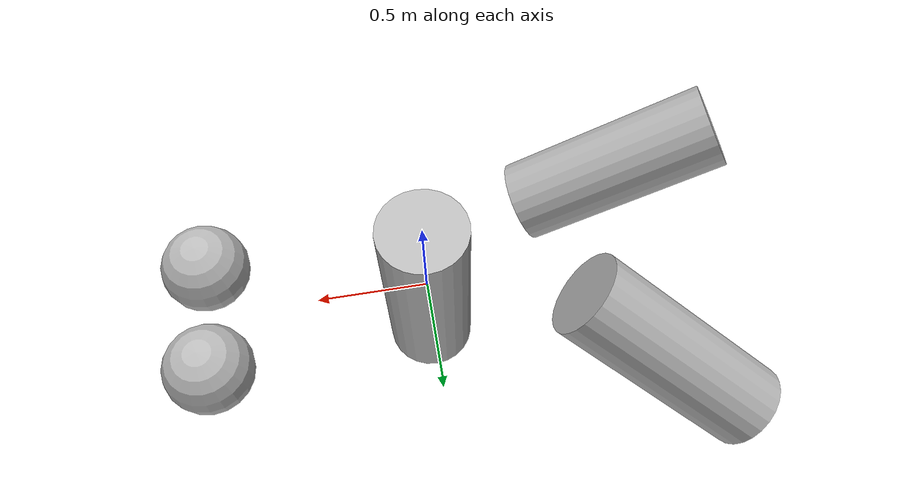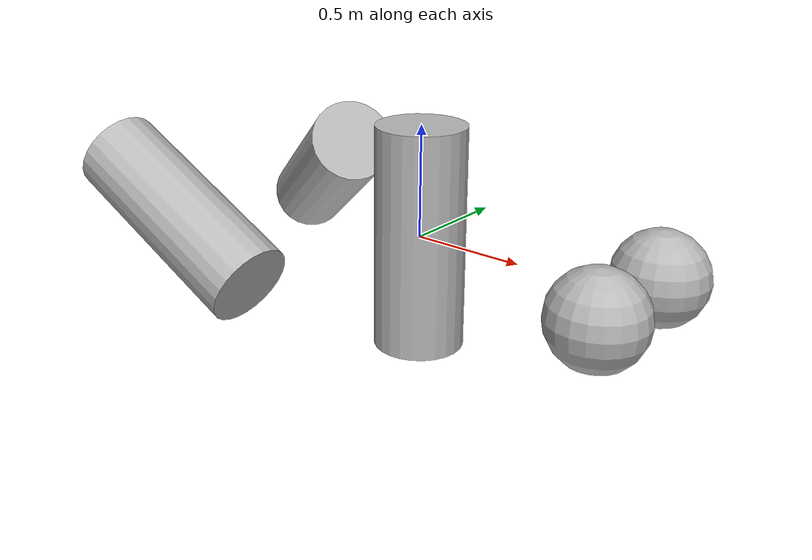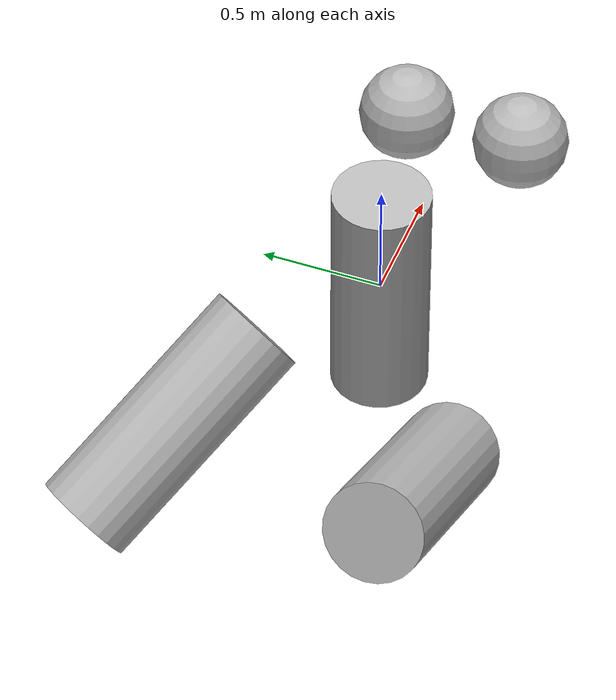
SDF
<?xml version="1.0" ?>
<sdf version="1.6">
  <world name="hydrodynamics">

   <physics name="1ms" type="ode">
      <max_step_size>0.001</max_step_size>
      <!-- Zero to run as fast as possible -->
      <real_time_factor>0</real_time_factor>
    </physics>

    <!-- prevent sinking -->
    <gravity>0 0 0</gravity>

    <plugin
      filename="ignition-gazebo-physics-system"
      name="ignition::gazebo::systems::Physics">
    </plugin>

    <light type="directional" name="sun">
      <cast_shadows>true</cast_shadows>
      <pose>0 0 10 0 0 0</pose>
      <diffuse>1 1 1 1</diffuse>
      <specular>0.5 0.5 0.5 1</specular>
      <attenuation>
        <range>1000</range>
        <constant>0.9</constant>
        <linear>0.01</linear>
        <quadratic>0.001</quadratic>
      </attenuation>
      <direction>-0.5 0.1 -0.9</direction>
    </light>

    <model name="sphere1">
      <link name="sphere1_link">
        <pose>1 0.25 0 0 0 0</pose>
        <inertial>
          <mass>25</mass>
          <inertia>
            <ixx>0.4</ixx>
            <ixy>0</ixy>
            <ixz>0</ixz>
            <iyy>0.4</iyy>
            <iyz>0</iyz>
            <izz>0.4</izz>
          </inertia>
        </inertial>

        <visual name='sphere1_visual'>
          <geometry>
            <sphere>
              <radius>0.2</radius>
            </sphere>
          </geometry>
        </visual>
        <collision name='sphere1_collision'>
          <geometry>
            <sphere>
              <radius>0.2</radius>
            </sphere>
          </geometry>
        </collision>
      </link>
    </model>

    <model name="sphere2">
      <link name="sphere2_link">
        <pose>1 -0.25 0 0 0 0</pose>
        <inertial>
          <mass>25</mass>
          <inertia>
            <ixx>0.4</ixx>
            <ixy>0</ixy>
            <ixz>0</ixz>
            <iyy>0.4</iyy>
            <iyz>0</iyz>
            <izz>0.4</izz>
          </inertia>
        </inertial>

        <visual name='sphere2_visual'>
          <geometry>
            <sphere>
              <radius>0.2</radius>
            </sphere>
          </geometry>
        </visual>
        <collision name='sphere2_collision'>
          <geometry>
            <sphere>
              <radius>0.2</radius>
            </sphere>
          </geometry>
        </collision>
      </link>

      <plugin
        filename="ignition-gazebo-hydrodynamics-system"
        name="ignition::gazebo::systems::Hydrodynamics">
        <link_name>sphere2_link</link_name>
        <water_density>918</water_density>
        <xDotU>0</xDotU>
        <yDotV>0</yDotV>
        <zDotW>15.381</zDotW>
        <kDotP>0</kDotP>
        <mDotQ>0</mDotQ>
        <nDotR>0</nDotR>
        <xUabsU>0</xUabsU>
        <xU>0</xU>
        <yVabsV>0</yVabsV>
        <yV>0</yV>
        <zWabsW>11.5359</zWabsW>
        <zW>0.211869</zW>
        <kPabsP>0</kPabsP>
        <kP>0</kP>
        <mQabsQ>0</mQabsQ>
        <mQ>0</mQ>
        <nRabsR>0</nRabsR>
        <nR>0</nR>
      </plugin>
    </model>

    <model name="cylinder1">
        <link name="cylinder1_link">
          <pose>0 0 0 0 0 0</pose>
          <inertial>
            <mass>40</mass>
            <inertia>
              <ixx>0.8</ixx>
              <ixy>0</ixy>
              <ixz>0</ixz>
              <iyy>0.8</iyy>
              <iyz>0</iyz>
              <izz>0.8</izz>
            </inertia>
          </inertial>

          <visual name='cylinder1_visual'>
            <geometry>
              <cylinder>
                <radius>0.2</radius>
                <length>1</length>
              </cylinder>
            </geometry>
          </visual>
          <collision name='cylinder1_collision'>
            <geometry>
              <cylinder>
                <radius>0.2</radius>
                <length>0.1</length>
              </cylinder>
            </geometry>
          </collision>
        </link>

      <plugin
        filename="ignition-gazebo-hydrodynamics-system"
        name="ignition::gazebo::systems::Hydrodynamics">
        <link_name>cylinder1_link</link_name>
        <water_density>1000</water_density>
        <xDotU>0</xDotU>
        <yDotV>0</yDotV>
        <zDotW>12.5664</zDotW>
        <kDotP>0</kDotP>
        <mDotQ>0</mDotQ>
        <nDotR>0</nDotR>
        <xUabsU>0</xUabsU>
        <xU>0</xU>
        <yVabsV>0</yVabsV>
        <yV>0</yV>
        <zWabsW>94.2475</zWabsW>
        <zW>0.0037699</zW>
        <kPabsP>0</kPabsP>
        <kP>0</kP>
        <mQabsQ>0</mQabsQ>
        <mQ>0</mQ>
        <nRabsR>0</nRabsR>
        <nR>0</nR>
      </plugin>
    </model>

    <model name="cylinder2">
        <link name="cylinder2_link">
          <pose>-1 0.5 0 45 0 45</pose>
          <inertial>
            <mass>40</mass>
            <inertia>
              <ixx>0.8</ixx>
              <ixy>0</ixy>
              <ixz>0</ixz>
              <iyy>0.8</iyy>
              <iyz>0</iyz>
              <izz>0.8</izz>
            </inertia>
          </inertial>

          <visual name='cylinder2_visual'>
            <geometry>
              <cylinder>
                <radius>0.2</radius>
                <length>1</length>
              </cylinder>
            </geometry>
          </visual>
          <collision name='cylinder2_collision'>
            <geometry>
              <cylinder>
                <radius>0.2</radius>
                <length>0.1</length>
              </cylinder>
            </geometry>
          </collision>
        </link>

      <plugin
        filename="ignition-gazebo-hydrodynamics-system"
        name="ignition::gazebo::systems::Hydrodynamics">
        <link_name>cylinder2_link</link_name>
        <water_density>1000</water_density>
        <xDotU>0</xDotU>
        <yDotV>0</yDotV>
        <zDotW>12.5664</zDotW>
        <kDotP>0</kDotP>
        <mDotQ>0</mDotQ>
        <nDotR>0</nDotR>
        <xUabsU>0</xUabsU>
        <xU>0</xU>
        <yVabsV>0</yVabsV>
        <yV>0</yV>
        <zWabsW>94.2475</zWabsW>
        <zW>0.0037699</zW>
        <kPabsP>0</kPabsP>
        <kP>0</kP>
        <mQabsQ>0</mQabsQ>
        <mQ>0</mQ>
        <nRabsR>0</nRabsR>
        <nR>0</nR>
      </plugin>
    </model>

    <model name="cylinder3">
        <link name="cylinder3_link">
          <pose>-1 -0.5 0 0 90 0</pose>
          <inertial>
            <mass>40</mass>
            <inertia>
              <ixx>0.8</ixx>
              <ixy>0</ixy>
              <ixz>0</ixz>
              <iyy>0.8</iyy>
              <iyz>0</iyz>
              <izz>0.8</izz>
            </inertia>
          </inertial>

          <visual name='cylinder3_visual'>
            <geometry>
              <cylinder>
                <radius>0.2</radius>
                <length>1</length>
              </cylinder>
            </geometry>
          </visual>
          <collision name='cylinder3_collision'>
            <geometry>
              <cylinder>
                <radius>0.2</radius>
                <length>0.1</length>
              </cylinder>
            </geometry>
          </collision>
        </link>

      <plugin
        filename="ignition-gazebo-hydrodynamics-system"
        name="ignition::gazebo::systems::Hydrodynamics">
        <link_name>cylinder3_link</link_name>
        <water_density>1000</water_density>
        <xDotU>0</xDotU>
        <yDotV>0</yDotV>
        <zDotW>12.5664</zDotW>
        <kDotP>0</kDotP>
        <mDotQ>0</mDotQ>
        <nDotR>0</nDotR>
        <xUabsU>0</xUabsU>
        <xU>0</xU>
        <yVabsV>0</yVabsV>
        <yV>0</yV>
        <zWabsW>94.2475</zWabsW>
        <zW>0.0037699</zW>
        <kPabsP>0</kPabsP>
        <kP>0</kP>
        <mQabsQ>0</mQabsQ>
        <mQ>0</mQ>
        <nRabsR>0</nRabsR>
        <nR>0</nR>
      </plugin>
    </model>
  </world>
</sdf>
